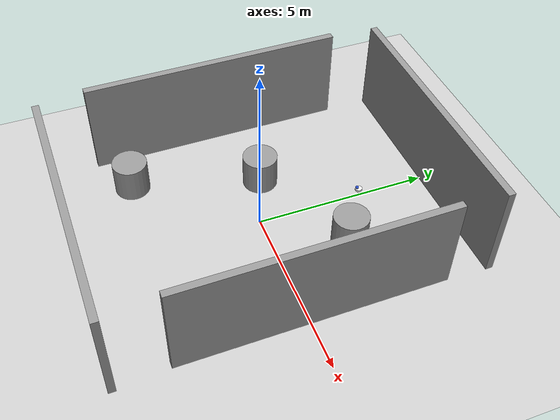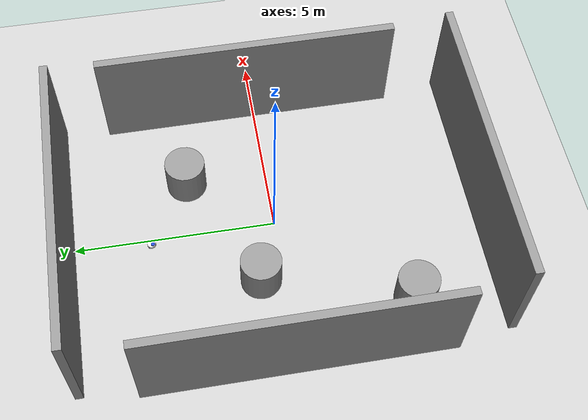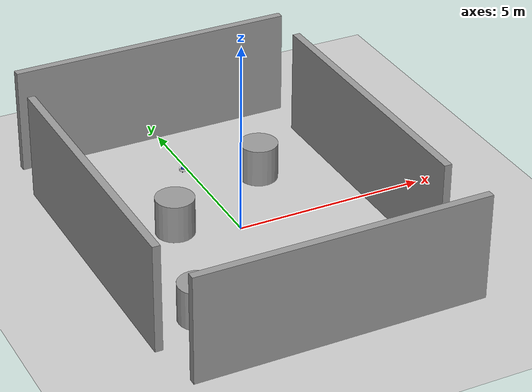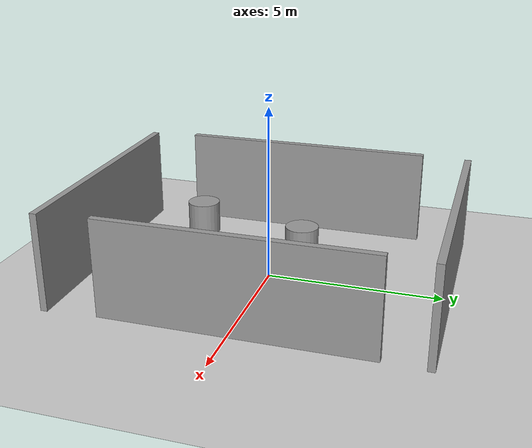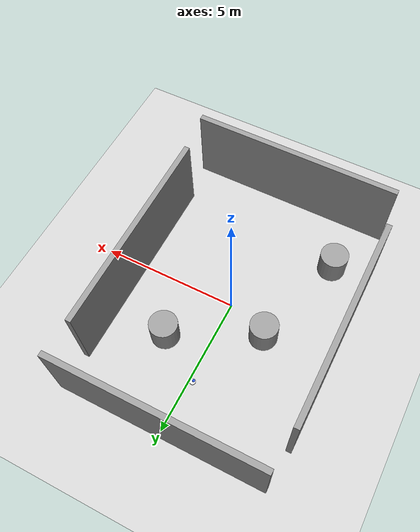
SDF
<sdf version="1.7">
 <world name="default">
  <light name="sun" type="directional">
   <pose>0 0 10 0 -0 0</pose>
   <diffuse>0.8 0.8 0.8 1</diffuse>
   <specular>0.2 0.2 0.2 1</specular>
   <attenuation>
    <range>1000</range>
    <constant>0.9</constant>
    <linear>0.01</linear>
    <quadratic>0.001</quadratic>
   </attenuation>
   <direction>-0.5 0.1 -0.9</direction>
   <spot><inner_angle>0</inner_angle><outer_angle>0</outer_angle><falloff>0</falloff></spot>
  </light>
  <model name="ground_plane">
   <static>1</static>
   <link name="link">
    <collision name="collision">
     <geometry><plane><normal>0 0 1</normal><size>100 100</size></plane></geometry>
     <surface>
      <contact><collide_bitmask>65535</collide_bitmask></contact>
      <friction><ode><mu>100</mu><mu2>50</mu2></ode></friction>
     </surface>
    </collision>
    <visual name="visual">
     <cast_shadows>0</cast_shadows>
     <geometry><plane><normal>0 0 1</normal><size>100 100</size></plane></geometry>
     <material>
      <script><uri>file://media/materials/scripts/gazebo.material</uri><name>Gazebo/Grey</name></script>
     </material>
    </visual>
   </link>
  </model>
  <gravity>0 0 -9.8</gravity>
  <magnetic_field>6e-06 2.3e-05 -4.2e-05</magnetic_field>
  <atmosphere type="adiabatic"/>
  <physics type="ode">
   <max_step_size>0.001</max_step_size>
   <real_time_factor>1</real_time_factor>
   <real_time_update_rate>1000</real_time_update_rate>
  </physics>
  <scene><ambient>0.4 0.4 0.4 1</ambient><background>0.7 0.7 0.7 1</background><shadows>1</shadows></scene>
  <audio><device>default</device></audio>
  <spherical_coordinates>
   <surface_model>EARTH_WGS84</surface_model>
   <latitude_deg>0</latitude_deg>
   <longitude_deg>0</longitude_deg>
   <elevation>0</elevation>
   <heading_deg>0</heading_deg>
  </spherical_coordinates>
  <model name="bot_one">
   <link name="base_link">
    <inertial>
     <pose>0.025147 0 0.060049 0 -0 0</pose>
     <mass>10.2</mass>
     <inertia>
      <ixx>0.0313783</ixx>
      <ixy>0</ixy>
      <ixz>0.000252574</ixz>
      <iyy>0.0320857</iyy>
      <iyz>0</iyz>
      <izz>0.0559735</izz>
     </inertia>
    </inertial>
    <collision name="base_link_fixed_joint_lump__chassis_collision">
     <pose>0.024 0 0.06025 0 -0 0</pose>
     <geometry><cylinder><length>0.062</length><radius>0.105</radius></cylinder></geometry>
    </collision>
    <collision name="base_link_fixed_joint_lump__caster_wheel_collision_1">
     <pose>0.096 0 0 0 -0 0</pose>
     <geometry><sphere><radius>0.02</radius></sphere></geometry>
     <surface><friction><ode><mu>0.001</mu><mu2>0.001</mu2></ode></friction></surface>
    </collision>
    <collision name="base_link_fixed_joint_lump__laser_frame_collision_2">
     <pose>0.069 0 0.1 0 -0 0</pose>
     <geometry><cylinder><length>0.04</length><radius>0.05</radius></cylinder></geometry>
    </collision>
    <visual name="base_link_fixed_joint_lump__chassis_visual">
     <pose>0.024 0 0.06025 0 -0 0</pose>
     <geometry><cylinder><length>0.062</length><radius>0.105</radius></cylinder></geometry>
     <material>
      <script><name>Gazebo/White</name><uri>file://media/materials/scripts/gazebo.material</uri></script>
     </material>
    </visual>
    <visual name="base_link_fixed_joint_lump__caster_wheel_visual_1">
     <pose>0.096 0 0 0 -0 0</pose>
     <geometry><sphere><radius>0.02</radius></sphere></geometry>
     <material>
      <script><name>Gazebo/Black</name><uri>file://media/materials/scripts/gazebo.material</uri></script>
     </material>
    </visual>
    <visual name="base_link_fixed_joint_lump__laser_frame_visual_2">
     <pose>0.069 0 0.1 0 -0 0</pose>
     <geometry><cylinder><length>0.04</length><radius>0.05</radius></cylinder></geometry>
     <material>
      <script><name>Gazebo/Blue</name><uri>file://media/materials/scripts/gazebo.material</uri></script>
     </material>
    </visual>
    <sensor name="laser" type="ray">
     <visualize>1</visualize>
     <update_rate>10</update_rate>
     <ray>
      <scan>
       <horizontal>
        <samples>360</samples>
        <min_angle>-3.14</min_angle>
        <max_angle>3.14</max_angle>
        <resolution>1</resolution>
       </horizontal>
       <vertical><samples>1</samples><min_angle>0</min_angle><max_angle>0</max_angle></vertical>
      </scan>
      <range><min>0.3</min><max>12</max></range>
     </ray>
     <plugin name="laser_controller" filename="libgazebo_ros_ray_sensor.so">
      <ros><argument>~/out:=scan</argument></ros>
      <output_type>sensor_msgs/LaserScan</output_type>
      <frame_name>laser_frame</frame_name>
     </plugin>
     <pose>0.069 0 0.1 0 -0 0</pose>
    </sensor>
   </link>
   <joint name="left_wheel_joint" type="revolute">
    <pose relative_to="base_link">0 0.085 0 -1.5708 0 0</pose>
    <parent>base_link</parent>
    <child>left_wheel</child>
    <axis>
     <xyz>0 0 1</xyz>
     <limit><lower>-1e+16</lower><upper>1e+16</upper></limit>
     <dynamics><spring_reference>0</spring_reference><spring_stiffness>0</spring_stiffness></dynamics>
    </axis>
   </joint>
   <link name="left_wheel">
    <pose relative_to="left_wheel_joint">0 0 0 0 -0 0</pose>
    <inertial>
     <mass>0.1</mass>
     <inertia>
      <ixx>1.08333e-05</ixx>
      <ixy>0</ixy>
      <ixz>0</ixz>
      <iyy>1.08333e-05</iyy>
      <iyz>0</iyz>
      <izz>2e-05</izz>
     </inertia>
    </inertial>
    <collision name="left_wheel_collision"><geometry><sphere><radius>0.02</radius></sphere></geometry></collision>
    <visual name="left_wheel_visual">
     <geometry><cylinder><length>0.01</length><radius>0.02</radius></cylinder></geometry>
     <material>
      <script><name>Gazebo/Black</name><uri>file://media/materials/scripts/gazebo.material</uri></script>
     </material>
    </visual>
   </link>
   <joint name="right_wheel_joint" type="revolute">
    <pose relative_to="base_link">0 -0.085 0 1.5708 -0 0</pose>
    <parent>base_link</parent>
    <child>right_wheel</child>
    <axis>
     <xyz>0 0 -1</xyz>
     <limit><lower>-1e+16</lower><upper>1e+16</upper></limit>
     <dynamics><spring_reference>0</spring_reference><spring_stiffness>0</spring_stiffness></dynamics>
    </axis>
   </joint>
   <link name="right_wheel">
    <pose relative_to="right_wheel_joint">0 0 0 0 -0 0</pose>
    <inertial>
     <mass>0.1</mass>
     <inertia>
      <ixx>1.08333e-05</ixx>
      <ixy>0</ixy>
      <ixz>0</ixz>
      <iyy>1.08333e-05</iyy>
      <iyz>0</iyz>
      <izz>2e-05</izz>
     </inertia>
    </inertial>
    <collision name="right_wheel_collision">
     <geometry><sphere><radius>0.02</radius></sphere></geometry>
    </collision>
    <visual name="right_wheel_visual">
     <geometry><cylinder><length>0.01</length><radius>0.02</radius></cylinder></geometry>
     <material>
      <script><name>Gazebo/Black</name><uri>file://media/materials/scripts/gazebo.material</uri></script>
     </material>
    </visual>
   </link>
   <static>0</static>
   <plugin name="gazebo_ros2_control" filename="libgazebo_ros2_control.so">
    <parameters>/home/dev/dev_ws/install/mogbe/share/mogbe/config/mogbe_controllers.yaml</parameters>
    <parameters>/home/dev/dev_ws/install/mogbe/share/mogbe/config/gaz_ros2_ctl_use_sim.yaml</parameters>
   </plugin>
   <pose>-0.122073 3.12792 0.019991 -4.6e-05 -9.7e-05 -2.21696</pose>
  </model>
  <model name="grey_wall">
   <static>1</static>
   <link name="link">
    <pose>0 0 1.4 0 -0 0</pose>
    <collision name="collision"><geometry><box><size>7.5 0.2 2.8</size></box></geometry></collision>
    <visual name="visual">
     <cast_shadows>0</cast_shadows>
     <geometry><box><size>7.5 0.2 2.8</size></box></geometry>
     <material>
      <script>
       <uri>model://grey_wall/materials/scripts</uri>
       <uri>model://grey_wall/materials/textures</uri>
       <name>vrc/grey_wall</name>
      </script>
     </material>
    </visual>
   </link>
   <pose>0.042367 -5.09043 0 0 -0 0</pose>
  </model>
  <model name="grey_wall_0">
   <static>1</static>
   <link name="link">
    <pose>0 0 1.4 0 -0 0</pose>
    <collision name="collision"><geometry><box><size>7.5 0.2 2.8</size></box></geometry></collision>
    <visual name="visual">
     <cast_shadows>0</cast_shadows>
     <geometry><box><size>7.5 0.2 2.8</size></box></geometry>
     <material>
      <script>
       <uri>model://grey_wall/materials/scripts</uri>
       <uri>model://grey_wall/materials/textures</uri>
       <name>vrc/grey_wall</name>
      </script>
     </material>
    </visual>
   </link>
   <pose>-0.068976 5.10858 0 0 -0 0</pose>
  </model>
  <model name="grey_wall_1">
   <static>1</static>
   <link name="link">
    <pose>0 0 1.4 0 -0 0</pose>
    <collision name="collision"><geometry><box><size>7.5 0.2 2.8</size></box></geometry></collision>
    <visual name="visual">
     <cast_shadows>0</cast_shadows>
     <geometry><box><size>7.5 0.2 2.8</size></box></geometry>
     <material>
      <script>
       <uri>model://grey_wall/materials/scripts</uri>
       <uri>model://grey_wall/materials/textures</uri>
       <name>vrc/grey_wall</name>
      </script>
     </material>
    </visual>
   </link>
   <pose>3.54806 0.142866 0 0 -0 1.57561</pose>
  </model>
  <model name="grey_wall_2">
   <static>1</static>
   <link name="link">
    <pose>0 0 1.4 0 -0 0</pose>
    <collision name="collision"><geometry><box><size>7.5 0.2 2.8</size></box></geometry></collision>
    <visual name="visual">
     <cast_shadows>0</cast_shadows>
     <geometry><box><size>7.5 0.2 2.8</size></box></geometry>
     <material>
      <script>
       <uri>model://grey_wall/materials/scripts</uri>
       <uri>model://grey_wall/materials/textures</uri>
       <name>vrc/grey_wall</name>
      </script>
     </material>
    </visual>
   </link>
   <pose>-3.90277 0.007209 -0 0 0 -1.56756</pose>
  </model>
  <model name="unit_cylinder">
   <pose>1.50547 2.03784 0.499997 3e-06 4e-06 -0</pose>
   <link name="link">
    <inertial>
     <mass>1</mass>
     <inertia><ixx>0.145833</ixx><ixy>0</ixy><ixz>0</ixz><iyy>0.145833</iyy><iyz>0</iyz><izz>0.125</izz></inertia>
    </inertial>
    <collision name="collision">
     <geometry><cylinder><radius>0.5</radius><length>1</length></cylinder></geometry>
    </collision>
    <visual name="visual">
     <geometry><cylinder><radius>0.5</radius><length>1</length></cylinder></geometry>
     <material>
      <script><name>Gazebo/Grey</name><uri>file://media/materials/scripts/gazebo.material</uri></script>
     </material>
    </visual>
   </link>
  </model>
  <model name="unit_cylinder_0">
   <pose>-2.56772 -2.99148 0.499993 -3e-06 -4e-06 -0</pose>
   <link name="link">
    <inertial>
     <mass>1</mass>
     <inertia><ixx>0.145833</ixx><ixy>0</ixy><ixz>0</ixz><iyy>0.145833</iyy><iyz>0</iyz><izz>0.125</izz></inertia>
    </inertial>
    <collision name="collision">
     <geometry><cylinder><radius>0.5</radius><length>1</length></cylinder></geometry>
    </collision>
    <visual name="visual">
     <geometry><cylinder><radius>0.5</radius><length>1</length></cylinder></geometry>
     <material>
      <script><name>Gazebo/Grey</name><uri>file://media/materials/scripts/gazebo.material</uri></script>
     </material>
    </visual>
   </link>
  </model>
  <model name="unit_cylinder_1">
   <pose>-1.51696 0.572247 0.499997 3e-06 4e-06 -0</pose>
   <link name="link">
    <inertial>
     <mass>1</mass>
     <inertia><ixx>0.145833</ixx><ixy>0</ixy><ixz>0</ixz><iyy>0.145833</iyy><iyz>0</iyz><izz>0.125</izz></inertia>
    </inertial>
    <collision name="collision">
     <geometry><cylinder><radius>0.5</radius><length>1</length></cylinder></geometry>
    </collision>
    <visual name="visual">
     <geometry><cylinder><radius>0.5</radius><length>1</length></cylinder></geometry>
     <material>
      <script><name>Gazebo/Grey</name><uri>file://media/materials/scripts/gazebo.material</uri></script>
     </material>
    </visual>
   </link>
  </model>
 </world>
</sdf>
